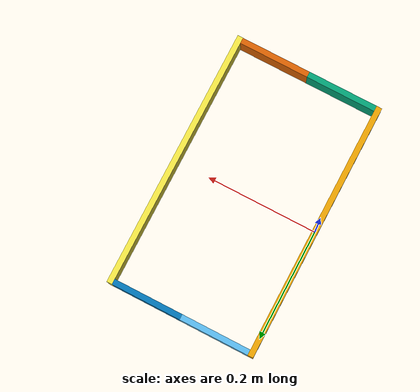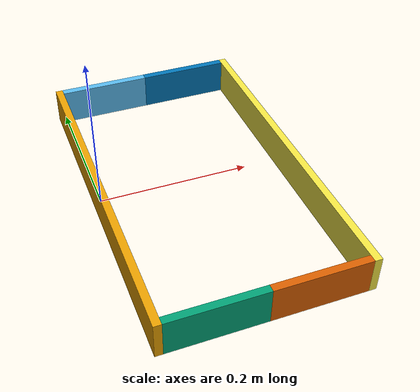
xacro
<?xml version="1.0"?>
<robot name="gripper"
       xmlns:xacro="http://ros.org/wiki/xacro">

  <!-- Constants for robot dimensions -->
  <xacro:property name="cone_radius" value=".14" />

  <xacro:property name="gripper_thickness" value="0.01" />
  <xacro:property name="gripper_height" value="0.05" />
  <xacro:property name="gripper_wide_block_width" value="${3.2 * cone_radius + 2.0 * gripper_thickness}" />
  <xacro:property name="gripper_side_block_width" value="${0.9 * cone_radius}" />

  <xacro:property name="gripper_material_density" value="2700" />
  <xacro:property name="gripper_wide_block_mass" value="${gripper_material_density * gripper_wide_block_width * gripper_thickness * gripper_height}" />
  <xacro:property name="gripper_side_block_mass" value="${gripper_material_density * gripper_side_block_width * gripper_thickness * gripper_height}" />

  <!-- Macro for cuboid mass moment of inertia -->
  <xacro:macro name="cuboid_moment_of_inertia" params="m d1 d2 d3">
    <inertia ixx="${m * (d2 * d2 + d3 * d3) / 12}" ixy="0.0" ixz="0.0"
	     iyy="${m * (d1 * d1 + d3 * d3) / 12}" iyz="0.0"
	     izz="${m * (d1 * d1 + d2 * d2) / 12}" />
  </xacro:macro>

  <!-- Macro for gripper wide block -->
  <xacro:macro name="gripper_wide_block" params="suffix">
    <link name="gripper_wide_block_${suffix}">
      <visual>
	<geometry>
	  <box size="${gripper_thickness} ${gripper_wide_block_width} ${gripper_height}" />
	</geometry>
      </visual>

      <collision>
	<geometry>
	  <box size="${gripper_thickness} ${gripper_wide_block_width} ${gripper_height}" />
	</geometry>
      </collision>

      <inertial>
	<mass value="${gripper_wide_block_mass}" />
	<xacro:cuboid_moment_of_inertia m="${gripper_wide_block_mass}" d1="${gripper_thickness}" d2="${gripper_wide_block_width}" d3="${gripper_height}" />
      </inertial>
    </link>
  </xacro:macro>

  <!-- Macro for gripper side block -->
  <xacro:macro name="gripper_side_block" params="suffix">
  <link name="gripper_side_block_${suffix}">
    <visual>
      <geometry>
	<box size="${gripper_side_block_width} ${gripper_thickness} ${gripper_height}" />
      </geometry>
    </visual>

    <collision name="collision">
      <geometry>
	<box size="${gripper_side_block_width} ${gripper_thickness} ${gripper_height}" />
      </geometry>
    </collision>

    <inertial>
      <mass value="${gripper_side_block_mass}" />
      <xacro:cuboid_moment_of_inertia m="${gripper_side_block_mass}" d1="${gripper_side_block_width}" d2="${gripper_thickness}" d3="${gripper_height}" />
    </inertial>
  </link>
  </xacro:macro>

  <!-- Macro for fixed joints -->
  <xacro:macro name="block_fixed_joints" params="suffix x y parent_suffix child_suffix">
    <joint name="block_fixed_joint_${suffix}" type="fixed">
      <origin xyz="${x} ${y} 0" rpy="0 0 0" />
      <parent link="gripper_wide_block_${parent_suffix}" />
      <child link="gripper_side_block_${child_suffix}" />
    </joint>
  </xacro:macro>

  <!-- Cuboids constituting gripper -->
  <xacro:gripper_wide_block suffix="p" />
  <xacro:gripper_side_block suffix="p1" />
  <xacro:gripper_side_block suffix="p2" />
  <xacro:gripper_wide_block suffix="d" />
  <xacro:gripper_side_block suffix="d1" />
  <xacro:gripper_side_block suffix="d2" />

  <!-- Fixed joints for gripper halves -->
  <xacro:block_fixed_joints suffix="p1" x="${(gripper_side_block_width + gripper_thickness) / 2}" y="${(gripper_wide_block_width - gripper_thickness) / 2}"
			    parent_suffix="p" child_suffix="p1" />
  <xacro:block_fixed_joints suffix="p2" x="${(gripper_side_block_width + gripper_thickness) / 2}" y="${-(gripper_wide_block_width - gripper_thickness) / 2}"
			    parent_suffix="p" child_suffix="p2" />
  <xacro:block_fixed_joints suffix="d1" x="${-(gripper_side_block_width + gripper_thickness) / 2}" y="${(gripper_wide_block_width - gripper_thickness) / 2}"
			    parent_suffix="d" child_suffix="d1" />
  <xacro:block_fixed_joints suffix="d2" x="${-(gripper_side_block_width + gripper_thickness) / 2}" y="${-(gripper_wide_block_width - gripper_thickness) / 2}"
			    parent_suffix="d" child_suffix="d2" />

  <!-- Phantom link for center of gripper -->
  <link name="gripper_center" />
  <joint name="gripper_center_fixed_joint" type="fixed">
    <!--origin xyz="${gripper_wide_block_width + gripper_thickness / 2} 0 0" rpy="0 0 0"/-->
    <!--origin xyz="${cone_radius + gripper_thickness / 2} 0 0" rpy="0 0 0"/-->
    <origin xyz="${1.5 * cone_radius + gripper_thickness / 2} 0 0" rpy="0 0 0"/>
    <parent link="gripper_wide_block_p"/>
    <child link="gripper_center"/>
  </joint>

  <!-- Prismatic joint -->
  <joint name="gripper_joint" type="prismatic">
    <origin xyz="${2 * gripper_side_block_width + gripper_thickness} 0 0" rpy="0 0 0" />
    <parent link="gripper_wide_block_p" />
    <child link="gripper_wide_block_d" />
    <limit effort="1000000000000" lower="-100" upper="100" velocity="0.5"/>
  </joint>

  <transmission name="gripper_joint_transmission">
    <type>transmission_interface/SimpleTransmission</type>
    <joint name="gripper_joint">
      <hardwareInterface>hardware_interface/EffortJointInterface</hardwareInterface>
    </joint>
    <actuator name="gripper_joint_motor">
      <hardwareInterface>hardware_interface/EffortJointInterface</hardwareInterface>
      <mechanicalReduction>1</mechanicalReduction>
    </actuator>
  </transmission>

  <!-- High friction on gripper -->
  <gazebo reference="gripper_wide_block_p">
    <mu1>100.0</mu1>
    <mu2>100.0</mu2>
    <minDepth>0.003</minDepth>
    <maxVel>0</maxVel>
  </gazebo>

  <gazebo reference="gripper_wide_block_d">
    <mu1>100.0</mu1>
    <mu2>100.0</mu2>
    <minDepth>0.003</minDepth>
    <maxVel>0</maxVel>
  </gazebo>

</robot>
